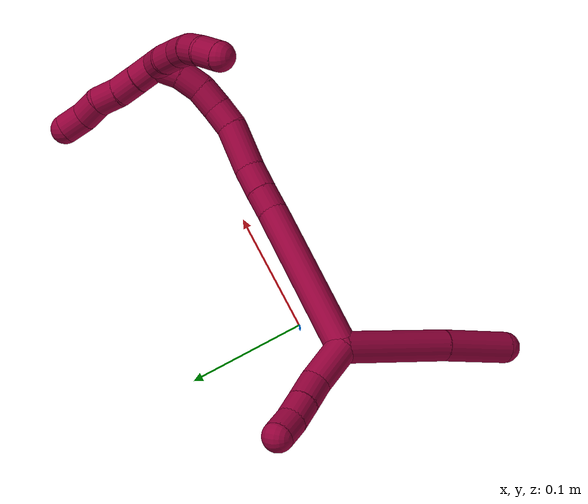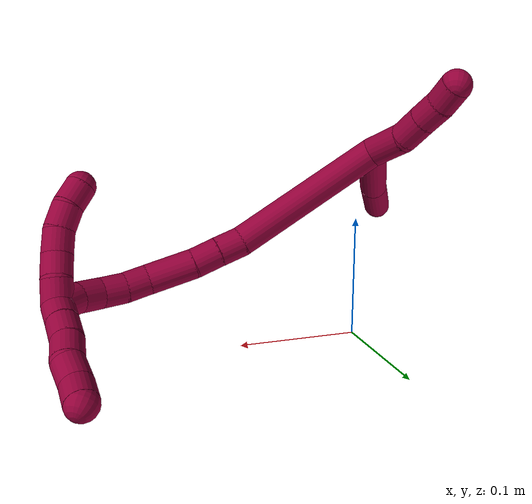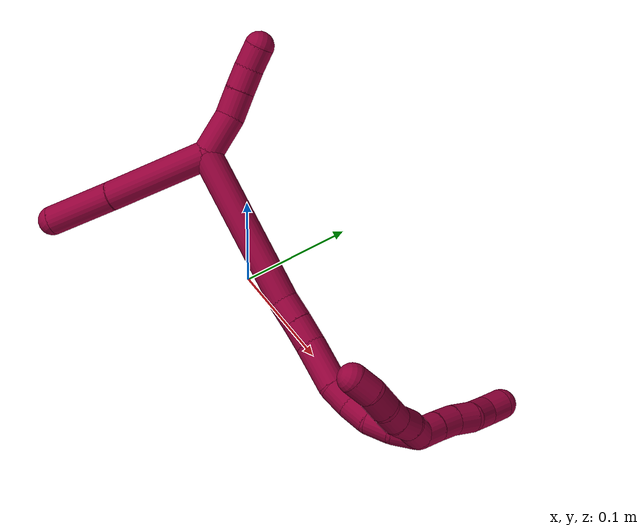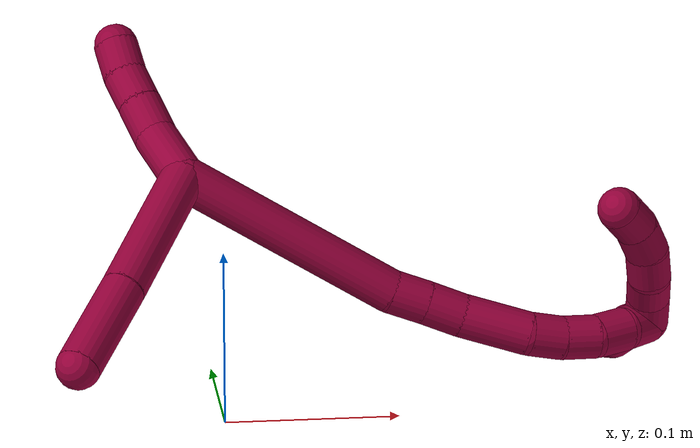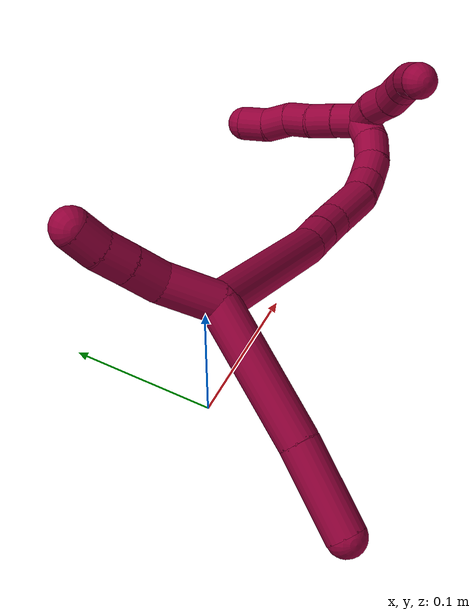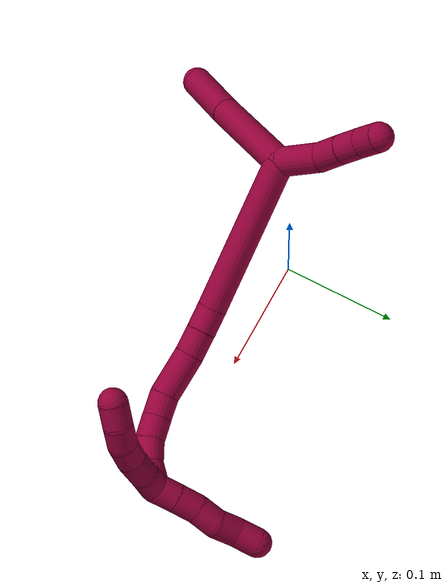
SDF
<sdf version="1.7">
 <world name="default">
  <model name="8">
   <static>0</static>
   <link name="8">
    <collision name="collision-cylinder-e_1_2_8">
     <pose>0.011224 -0.03855 0.021714 1.05782 0.248435 0.145692</pose>
     <geometry><cylinder><radius>0.0125</radius><length>0.091293</length></cylinder></geometry>
     <surface>
      <friction><ode><mu>1.16</mu><mu2>1.16</mu2><slip1>0</slip1><slip2>0</slip2></ode></friction>
      <contact><ode><kp>1e+06</kp><kd>1</kd><max_vel>0</max_vel><min_depth>0.001</min_depth></ode></contact>
     </surface>
    </collision>
    <visual name="visual-cylinder-e_1_2_8">
     <pose>0.011224 -0.03855 0.021714 1.05782 0.248435 0.145692</pose>
     <geometry><cylinder><radius>0.0125</radius><length>0.091293</length></cylinder></geometry>
     <material><ambient>0.584314 0 0.227451 1</ambient></material>
    </visual>
    <collision name="collision-cylinder-e_2_8_6">
     <pose>0.028345 -0.102635 0.056651 1.09301 0.202285 0.123316</pose>
     <geometry><cylinder><radius>0.0125</radius><length>0.058707</length></cylinder></geometry>
     <surface>
      <friction><ode><mu>1.16</mu><mu2>1.16</mu2><slip1>0</slip1><slip2>0</slip2></ode></friction>
      <contact><ode><kp>1e+06</kp><kd>1</kd><max_vel>0</max_vel><min_depth>0.001</min_depth></ode></contact>
     </surface>
    </collision>
    <visual name="visual-cylinder-e_2_8_6">
     <pose>0.028345 -0.102635 0.056651 1.09301 0.202285 0.123316</pose>
     <geometry><cylinder><radius>0.0125</radius><length>0.058707</length></cylinder></geometry>
     <material><ambient>0.584314 0 0.227451 1</ambient></material>
    </visual>
    <collision name="collision-cylinder-e_1_2_9">
     <pose>-0.015708 0.008706 -0.003256 -1.92868 -1.03651 1.37612</pose>
     <geometry><cylinder><radius>0.0125</radius><length>0.036504</length></cylinder></geometry>
     <surface>
      <friction><ode><mu>1.16</mu><mu2>1.16</mu2><slip1>0</slip1><slip2>0</slip2></ode></friction>
      <contact><ode><kp>1e+06</kp><kd>1</kd><max_vel>0</max_vel><min_depth>0.001</min_depth></ode></contact>
     </surface>
    </collision>
    <visual name="visual-cylinder-e_1_2_9">
     <pose>-0.015708 0.008706 -0.003256 -1.92868 -1.03651 1.37612</pose>
     <geometry><cylinder><radius>0.0125</radius><length>0.036504</length></cylinder></geometry>
     <material><ambient>0.584314 0 0.227451 1</ambient></material>
    </visual>
    <collision name="collision-cylinder-e_2_9_10">
     <pose>-0.040453 0.024587 -0.00564 -1.4499 -0.896065 0.805052</pose>
     <geometry><cylinder><radius>0.0125</radius><length>0.023143</length></cylinder></geometry>
     <surface>
      <friction><ode><mu>1.16</mu><mu2>1.16</mu2><slip1>0</slip1><slip2>0</slip2></ode></friction>
      <contact><ode><kp>1e+06</kp><kd>1</kd><max_vel>0</max_vel><min_depth>0.001</min_depth></ode></contact>
     </surface>
    </collision>
    <visual name="visual-cylinder-e_2_9_10">
     <pose>-0.040453 0.024587 -0.00564 -1.4499 -0.896065 0.805052</pose>
     <geometry><cylinder><radius>0.0125</radius><length>0.023143</length></cylinder></geometry>
     <material><ambient>0.584314 0 0.227451 1</ambient></material>
    </visual>
    <collision name="collision-cylinder-e_3_10_11">
     <pose>-0.057518 0.03799 -0.004241 -1.48643 -0.909422 0.844507</pose>
     <geometry><cylinder><radius>0.0125</radius><length>0.020348</length></cylinder></geometry>
     <surface>
      <friction><ode><mu>1.16</mu><mu2>1.16</mu2><slip1>0</slip1><slip2>0</slip2></ode></friction>
      <contact><ode><kp>1e+06</kp><kd>1</kd><max_vel>0</max_vel><min_depth>0.001</min_depth></ode></contact>
     </surface>
    </collision>
    <visual name="visual-cylinder-e_3_10_11">
     <pose>-0.057518 0.03799 -0.004241 -1.48643 -0.909422 0.844507</pose>
     <geometry><cylinder><radius>0.0125</radius><length>0.020348</length></cylinder></geometry>
     <material><ambient>0.584314 0 0.227451 1</ambient></material>
    </visual>
    <collision name="collision-cylinder-e_4_11_5">
     <pose>-0.072373 0.051504 -0.003148 -1.49316 -0.751262 0.699718</pose>
     <geometry><cylinder><radius>0.0125</radius><length>0.020004</length></cylinder></geometry>
     <surface>
      <friction><ode><mu>1.16</mu><mu2>1.16</mu2><slip1>0</slip1><slip2>0</slip2></ode></friction>
      <contact><ode><kp>1e+06</kp><kd>1</kd><max_vel>0</max_vel><min_depth>0.001</min_depth></ode></contact>
     </surface>
    </collision>
    <visual name="visual-cylinder-e_4_11_5">
     <pose>-0.072373 0.051504 -0.003148 -1.49316 -0.751262 0.699718</pose>
     <geometry><cylinder><radius>0.0125</radius><length>0.020004</length></cylinder></geometry>
     <material><ambient>0.584314 0 0.227451 1</ambient></material>
    </visual>
    <collision name="collision-cylinder-e_1_2_12">
     <pose>0.049448 -0.002631 -0.045937 3.08439 0.821372 3.01038</pose>
     <geometry><cylinder><radius>0.0125</radius><length>0.135088</length></cylinder></geometry>
     <surface>
      <friction><ode><mu>1.16</mu><mu2>1.16</mu2><slip1>0</slip1><slip2>0</slip2></ode></friction>
      <contact><ode><kp>1e+06</kp><kd>1</kd><max_vel>0</max_vel><min_depth>0.001</min_depth></ode></contact>
     </surface>
    </collision>
    <visual name="visual-cylinder-e_1_2_12">
     <pose>0.049448 -0.002631 -0.045937 3.08439 0.821372 3.01038</pose>
     <geometry><cylinder><radius>0.0125</radius><length>0.135088</length></cylinder></geometry>
     <material><ambient>0.584314 0 0.227451 1</ambient></material>
    </visual>
    <collision name="collision-cylinder-e_2_12_13">
     <pose>0.106863 -0.003741 -0.098619 -2.9199 0.856068 -2.66303</pose>
     <geometry><cylinder><radius>0.0125</radius><length>0.0211</length></cylinder></geometry>
     <surface>
      <friction><ode><mu>1.16</mu><mu2>1.16</mu2><slip1>0</slip1><slip2>0</slip2></ode></friction>
      <contact><ode><kp>1e+06</kp><kd>1</kd><max_vel>0</max_vel><min_depth>0.001</min_depth></ode></contact>
     </surface>
    </collision>
    <visual name="visual-cylinder-e_2_12_13">
     <pose>0.106863 -0.003741 -0.098619 -2.9199 0.856068 -2.66303</pose>
     <geometry><cylinder><radius>0.0125</radius><length>0.0211</length></cylinder></geometry>
     <material><ambient>0.584314 0 0.227451 1</ambient></material>
    </visual>
    <collision name="collision-cylinder-e_3_13_14">
     <pose>0.123251 -0.001004 -0.112358 -2.96931 0.870371 -2.77429</pose>
     <geometry><cylinder><radius>0.0125</radius><length>0.022026</length></cylinder></geometry>
     <surface>
      <friction><ode><mu>1.16</mu><mu2>1.16</mu2><slip1>0</slip1><slip2>0</slip2></ode></friction>
      <contact><ode><kp>1e+06</kp><kd>1</kd><max_vel>0</max_vel><min_depth>0.001</min_depth></ode></contact>
     </surface>
    </collision>
    <visual name="visual-cylinder-e_3_13_14">
     <pose>0.123251 -0.001004 -0.112358 -2.96931 0.870371 -2.77429</pose>
     <geometry><cylinder><radius>0.0125</radius><length>0.022026</length></cylinder></geometry>
     <material><ambient>0.584314 0 0.227451 1</ambient></material>
    </visual>
    <collision name="collision-cylinder-e_4_14_15">
     <pose>0.147822 0.003611 -0.130242 -2.8392 0.955785 -2.5694</pose>
     <geometry><cylinder><radius>0.0125</radius><length>0.039547</length></cylinder></geometry>
     <surface>
      <friction><ode><mu>1.16</mu><mu2>1.16</mu2><slip1>0</slip1><slip2>0</slip2></ode></friction>
      <contact><ode><kp>1e+06</kp><kd>1</kd><max_vel>0</max_vel><min_depth>0.001</min_depth></ode></contact>
     </surface>
    </collision>
    <visual name="visual-cylinder-e_4_14_15">
     <pose>0.147822 0.003611 -0.130242 -2.8392 0.955785 -2.5694</pose>
     <geometry><cylinder><radius>0.0125</radius><length>0.039547</length></cylinder></geometry>
     <material><ambient>0.584314 0 0.227451 1</ambient></material>
    </visual>
    <collision name="collision-cylinder-e_5_15_16">
     <pose>0.170604 0.010242 -0.147977 -2.70017 0.719485 -2.06584</pose>
     <geometry><cylinder><radius>0.0125</radius><length>0.020128</length></cylinder></geometry>
     <surface>
      <friction><ode><mu>1.16</mu><mu2>1.16</mu2><slip1>0</slip1><slip2>0</slip2></ode></friction>
      <contact><ode><kp>1e+06</kp><kd>1</kd><max_vel>0</max_vel><min_depth>0.001</min_depth></ode></contact>
     </surface>
    </collision>
    <visual name="visual-cylinder-e_5_15_16">
     <pose>0.170604 0.010242 -0.147977 -2.70017 0.719485 -2.06584</pose>
     <geometry><cylinder><radius>0.0125</radius><length>0.020128</length></cylinder></geometry>
     <material><ambient>0.584314 0 0.227451 1</ambient></material>
    </visual>
    <collision name="collision-cylinder-e_6_16_17">
     <pose>0.183575 0.018294 -0.161361 -2.50667 0.662619 -1.61662</pose>
     <geometry><cylinder><radius>0.0125</radius><length>0.020607</length></cylinder></geometry>
     <surface>
      <friction><ode><mu>1.16</mu><mu2>1.16</mu2><slip1>0</slip1><slip2>0</slip2></ode></friction>
      <contact><ode><kp>1e+06</kp><kd>1</kd><max_vel>0</max_vel><min_depth>0.001</min_depth></ode></contact>
     </surface>
    </collision>
    <visual name="visual-cylinder-e_6_16_17">
     <pose>0.183575 0.018294 -0.161361 -2.50667 0.662619 -1.61662</pose>
     <geometry><cylinder><radius>0.0125</radius><length>0.020607</length></cylinder></geometry>
     <material><ambient>0.584314 0 0.227451 1</ambient></material>
    </visual>
    <collision name="collision-cylinder-e_7_17_18">
     <pose>0.193813 0.029325 -0.175198 -2.43634 0.386457 -0.977367</pose>
     <geometry><cylinder><radius>0.0125</radius><length>0.020694</length></cylinder></geometry>
     <surface>
      <friction><ode><mu>1.16</mu><mu2>1.16</mu2><slip1>0</slip1><slip2>0</slip2></ode></friction>
      <contact><ode><kp>1e+06</kp><kd>1</kd><max_vel>0</max_vel><min_depth>0.001</min_depth></ode></contact>
     </surface>
    </collision>
    <visual name="visual-cylinder-e_7_17_18">
     <pose>0.193813 0.029325 -0.175198 -2.43634 0.386457 -0.977367</pose>
     <geometry><cylinder><radius>0.0125</radius><length>0.020694</length></cylinder></geometry>
     <material><ambient>0.584314 0 0.227451 1</ambient></material>
    </visual>
    <collision name="collision-cylinder-e_8_18_1">
     <pose>0.199018 0.041352 -0.191026 -2.54324 0.125762 -0.402751</pose>
     <geometry><cylinder><radius>0.0125</radius><length>0.020811</length></cylinder></geometry>
     <surface>
      <friction><ode><mu>1.16</mu><mu2>1.16</mu2><slip1>0</slip1><slip2>0</slip2></ode></friction>
      <contact><ode><kp>1e+06</kp><kd>1</kd><max_vel>0</max_vel><min_depth>0.001</min_depth></ode></contact>
     </surface>
    </collision>
    <visual name="visual-cylinder-e_8_18_1">
     <pose>0.199018 0.041352 -0.191026 -2.54324 0.125762 -0.402751</pose>
     <geometry><cylinder><radius>0.0125</radius><length>0.020811</length></cylinder></geometry>
     <material><ambient>0.584314 0 0.227451 1</ambient></material>
    </visual>
    <collision name="collision-cylinder-e_1_1_19">
     <pose>0.201517 0.052791 -0.191373 -0.60218 0.119683 -0.037205</pose>
     <geometry><cylinder><radius>0.0125</radius><length>0.02</length></cylinder></geometry>
     <surface>
      <friction><ode><mu>1.16</mu><mu2>1.16</mu2><slip1>0</slip1><slip2>0</slip2></ode></friction>
      <contact><ode><kp>1e+06</kp><kd>1</kd><max_vel>0</max_vel><min_depth>0.001</min_depth></ode></contact>
     </surface>
    </collision>
    <visual name="visual-cylinder-e_1_1_19">
     <pose>0.201517 0.052791 -0.191373 -0.60218 0.119683 -0.037205</pose>
     <geometry><cylinder><radius>0.0125</radius><length>0.02</length></cylinder></geometry>
     <material><ambient>0.584314 0 0.227451 1</ambient></material>
    </visual>
    <collision name="collision-cylinder-e_2_19_20">
     <pose>0.20488 0.062 -0.174111 -0.376021 0.218612 -0.041753</pose>
     <geometry><cylinder><radius>0.0125</radius><length>0.02</length></cylinder></geometry>
     <surface>
      <friction><ode><mu>1.16</mu><mu2>1.16</mu2><slip1>0</slip1><slip2>0</slip2></ode></friction>
      <contact><ode><kp>1e+06</kp><kd>1</kd><max_vel>0</max_vel><min_depth>0.001</min_depth></ode></contact>
     </surface>
    </collision>
    <visual name="visual-cylinder-e_2_19_20">
     <pose>0.20488 0.062 -0.174111 -0.376021 0.218612 -0.041753</pose>
     <geometry><cylinder><radius>0.0125</radius><length>0.02</length></cylinder></geometry>
     <material><ambient>0.584314 0 0.227451 1</ambient></material>
    </visual>
    <collision name="collision-cylinder-e_3_20_21">
     <pose>0.207334 0.070689 -0.156437 -0.535912 0.028538 -0.007836</pose>
     <geometry><cylinder><radius>0.0125</radius><length>0.02</length></cylinder></geometry>
     <surface>
      <friction><ode><mu>1.16</mu><mu2>1.16</mu2><slip1>0</slip1><slip2>0</slip2></ode></friction>
      <contact><ode><kp>1e+06</kp><kd>1</kd><max_vel>0</max_vel><min_depth>0.001</min_depth></ode></contact>
     </surface>
    </collision>
    <visual name="visual-cylinder-e_3_20_21">
     <pose>0.207334 0.070689 -0.156437 -0.535912 0.028538 -0.007836</pose>
     <geometry><cylinder><radius>0.0125</radius><length>0.02</length></cylinder></geometry>
     <material><ambient>0.584314 0 0.227451 1</ambient></material>
    </visual>
    <collision name="collision-cylinder-e_4_21_22">
     <pose>0.205869 0.07943 -0.138693 -0.378393 -0.175978 0.033782</pose>
     <geometry><cylinder><radius>0.0125</radius><length>0.02</length></cylinder></geometry>
     <surface>
      <friction><ode><mu>1.16</mu><mu2>1.16</mu2><slip1>0</slip1><slip2>0</slip2></ode></friction>
      <contact><ode><kp>1e+06</kp><kd>1</kd><max_vel>0</max_vel><min_depth>0.001</min_depth></ode></contact>
     </surface>
    </collision>
    <visual name="visual-cylinder-e_4_21_22">
     <pose>0.205869 0.07943 -0.138693 -0.378393 -0.175978 0.033782</pose>
     <geometry><cylinder><radius>0.0125</radius><length>0.02</length></cylinder></geometry>
     <material><ambient>0.584314 0 0.227451 1</ambient></material>
    </visual>
    <collision name="collision-cylinder-e_5_22_4">
     <pose>0.202068 0.084232 -0.119826 -0.119294 -0.206495 0.012375</pose>
     <geometry><cylinder><radius>0.0125</radius><length>0.02</length></cylinder></geometry>
     <surface>
      <friction><ode><mu>1.16</mu><mu2>1.16</mu2><slip1>0</slip1><slip2>0</slip2></ode></friction>
      <contact><ode><kp>1e+06</kp><kd>1</kd><max_vel>0</max_vel><min_depth>0.001</min_depth></ode></contact>
     </surface>
    </collision>
    <visual name="visual-cylinder-e_5_22_4">
     <pose>0.202068 0.084232 -0.119826 -0.119294 -0.206495 0.012375</pose>
     <geometry><cylinder><radius>0.0125</radius><length>0.02</length></cylinder></geometry>
     <material><ambient>0.584314 0 0.227451 1</ambient></material>
    </visual>
    <collision name="collision-cylinder-e_1_1_23">
     <pose>0.194041 0.047276 -0.207335 -3.12752 -0.679222 3.10177</pose>
     <geometry><cylinder><radius>0.0125</radius><length>0.02</length></cylinder></geometry>
     <surface>
      <friction><ode><mu>1.16</mu><mu2>1.16</mu2><slip1>0</slip1><slip2>0</slip2></ode></friction>
      <contact><ode><kp>1e+06</kp><kd>1</kd><max_vel>0</max_vel><min_depth>0.001</min_depth></ode></contact>
     </surface>
    </collision>
    <visual name="visual-cylinder-e_1_1_23">
     <pose>0.194041 0.047276 -0.207335 -3.12752 -0.679222 3.10177</pose>
     <geometry><cylinder><radius>0.0125</radius><length>0.02</length></cylinder></geometry>
     <material><ambient>0.584314 0 0.227451 1</ambient></material>
    </visual>
    <collision name="collision-cylinder-e_2_23_24">
     <pose>0.181748 0.047138 -0.223103 3.11051 -0.644924 -3.04861</pose>
     <geometry><cylinder><radius>0.0125</radius><length>0.02</length></cylinder></geometry>
     <surface>
      <friction><ode><mu>1.16</mu><mu2>1.16</mu2><slip1>0</slip1><slip2>0</slip2></ode></friction>
      <contact><ode><kp>1e+06</kp><kd>1</kd><max_vel>0</max_vel><min_depth>0.001</min_depth></ode></contact>
     </surface>
    </collision>
    <visual name="visual-cylinder-e_2_23_24">
     <pose>0.181748 0.047138 -0.223103 3.11051 -0.644924 -3.04861</pose>
     <geometry><cylinder><radius>0.0125</radius><length>0.02</length></cylinder></geometry>
     <material><ambient>0.584314 0 0.227451 1</ambient></material>
    </visual>
    <collision name="collision-cylinder-e_3_24_25">
     <pose>0.171072 0.047309 -0.239926 -3.09415 -0.485304 2.95049</pose>
     <geometry><cylinder><radius>0.0125</radius><length>0.02</length></cylinder></geometry>
     <surface>
      <friction><ode><mu>1.16</mu><mu2>1.16</mu2><slip1>0</slip1><slip2>0</slip2></ode></friction>
      <contact><ode><kp>1e+06</kp><kd>1</kd><max_vel>0</max_vel><min_depth>0.001</min_depth></ode></contact>
     </surface>
    </collision>
    <visual name="visual-cylinder-e_3_24_25">
     <pose>0.171072 0.047309 -0.239926 -3.09415 -0.485304 2.95049</pose>
     <geometry><cylinder><radius>0.0125</radius><length>0.02</length></cylinder></geometry>
     <material><ambient>0.584314 0 0.227451 1</ambient></material>
    </visual>
    <collision name="collision-cylinder-e_4_25_26">
     <pose>0.160272 0.04553 -0.256346 2.8595 -0.660489 -2.35621</pose>
     <geometry><cylinder><radius>0.0125</radius><length>0.02</length></cylinder></geometry>
     <surface>
      <friction><ode><mu>1.16</mu><mu2>1.16</mu2><slip1>0</slip1><slip2>0</slip2></ode></friction>
      <contact><ode><kp>1e+06</kp><kd>1</kd><max_vel>0</max_vel><min_depth>0.001</min_depth></ode></contact>
     </surface>
    </collision>
    <visual name="visual-cylinder-e_4_25_26">
     <pose>0.160272 0.04553 -0.256346 2.8595 -0.660489 -2.35621</pose>
     <geometry><cylinder><radius>0.0125</radius><length>0.02</length></cylinder></geometry>
     <material><ambient>0.584314 0 0.227451 1</ambient></material>
    </visual>
    <collision name="collision-cylinder-e_5_26_3">
     <pose>0.147877 0.044037 -0.271697 -3.05099 -0.676426 2.88523</pose>
     <geometry><cylinder><radius>0.0125</radius><length>0.02</length></cylinder></geometry>
     <surface>
      <friction><ode><mu>1.16</mu><mu2>1.16</mu2><slip1>0</slip1><slip2>0</slip2></ode></friction>
      <contact><ode><kp>1e+06</kp><kd>1</kd><max_vel>0</max_vel><min_depth>0.001</min_depth></ode></contact>
     </surface>
    </collision>
    <visual name="visual-cylinder-e_5_26_3">
     <pose>0.147877 0.044037 -0.271697 -3.05099 -0.676426 2.88523</pose>
     <geometry><cylinder><radius>0.0125</radius><length>0.02</length></cylinder></geometry>
     <material><ambient>0.584314 0 0.227451 1</ambient></material>
    </visual>
    <collision name="collision-sphere-3">
     <pose>0.141617 0.044743 -0.279463 0 -0 0</pose>
     <geometry><sphere><radius>0.0125</radius></sphere></geometry>
     <surface>
      <friction><ode><mu>1.16</mu><mu2>1.16</mu2><slip1>0</slip1><slip2>0</slip2></ode></friction>
      <contact><ode><kp>1e+06</kp><kd>1</kd><max_vel>0</max_vel><min_depth>0.001</min_depth></ode></contact>
     </surface>
    </collision>
    <visual name="visual-sphere-3">
     <pose>0.141617 0.044743 -0.279463 0 -0 0</pose>
     <geometry><sphere><radius>0.0125</radius></sphere></geometry>
     <material><ambient>0.584314 0 0.227451 1</ambient></material>
    </visual>
    <collision name="collision-sphere-26">
     <pose>0.154137 0.043332 -0.263931 0 -0 0</pose>
     <geometry><sphere><radius>0.0125</radius></sphere></geometry>
     <surface>
      <friction><ode><mu>1.16</mu><mu2>1.16</mu2><slip1>0</slip1><slip2>0</slip2></ode></friction>
      <contact><ode><kp>1e+06</kp><kd>1</kd><max_vel>0</max_vel><min_depth>0.001</min_depth></ode></contact>
     </surface>
    </collision>
    <visual name="visual-sphere-26">
     <pose>0.154137 0.043332 -0.263931 0 -0 0</pose>
     <geometry><sphere><radius>0.0125</radius></sphere></geometry>
     <material><ambient>0.584314 0 0.227451 1</ambient></material>
    </visual>
    <collision name="collision-sphere-25">
     <pose>0.166407 0.047728 -0.248761 0 -0 0</pose>
     <geometry><sphere><radius>0.0125</radius></sphere></geometry>
     <surface>
      <friction><ode><mu>1.16</mu><mu2>1.16</mu2><slip1>0</slip1><slip2>0</slip2></ode></friction>
      <contact><ode><kp>1e+06</kp><kd>1</kd><max_vel>0</max_vel><min_depth>0.001</min_depth></ode></contact>
     </surface>
    </collision>
    <visual name="visual-sphere-25">
     <pose>0.166407 0.047728 -0.248761 0 -0 0</pose>
     <geometry><sphere><radius>0.0125</radius></sphere></geometry>
     <material><ambient>0.584314 0 0.227451 1</ambient></material>
    </visual>
    <collision name="collision-sphere-24">
     <pose>0.175737 0.046889 -0.23109 0 -0 0</pose>
     <geometry><sphere><radius>0.0125</radius></sphere></geometry>
     <surface>
      <friction><ode><mu>1.16</mu><mu2>1.16</mu2><slip1>0</slip1><slip2>0</slip2></ode></friction>
      <contact><ode><kp>1e+06</kp><kd>1</kd><max_vel>0</max_vel><min_depth>0.001</min_depth></ode></contact>
     </surface>
    </collision>
    <visual name="visual-sphere-24">
     <pose>0.175737 0.046889 -0.23109 0 -0 0</pose>
     <geometry><sphere><radius>0.0125</radius></sphere></geometry>
     <material><ambient>0.584314 0 0.227451 1</ambient></material>
    </visual>
    <collision name="collision-sphere-23">
     <pose>0.18776 0.047386 -0.215115 0 -0 0</pose>
     <geometry><sphere><radius>0.0125</radius></sphere></geometry>
     <surface>
      <friction><ode><mu>1.16</mu><mu2>1.16</mu2><slip1>0</slip1><slip2>0</slip2></ode></friction>
      <contact><ode><kp>1e+06</kp><kd>1</kd><max_vel>0</max_vel><min_depth>0.001</min_depth></ode></contact>
     </surface>
    </collision>
    <visual name="visual-sphere-23">
     <pose>0.18776 0.047386 -0.215115 0 -0 0</pose>
     <geometry><sphere><radius>0.0125</radius></sphere></geometry>
     <material><ambient>0.584314 0 0.227451 1</ambient></material>
    </visual>
    <collision name="collision-sphere-4">
     <pose>0.200017 0.085397 -0.110108 0 -0 0</pose>
     <geometry><sphere><radius>0.0125</radius></sphere></geometry>
     <surface>
      <friction><ode><mu>1.16</mu><mu2>1.16</mu2><slip1>0</slip1><slip2>0</slip2></ode></friction>
      <contact><ode><kp>1e+06</kp><kd>1</kd><max_vel>0</max_vel><min_depth>0.001</min_depth></ode></contact>
     </surface>
    </collision>
    <visual name="visual-sphere-4">
     <pose>0.200017 0.085397 -0.110108 0 -0 0</pose>
     <geometry><sphere><radius>0.0125</radius></sphere></geometry>
     <material><ambient>0.584314 0 0.227451 1</ambient></material>
    </visual>
    <collision name="collision-sphere-22">
     <pose>0.204118 0.083067 -0.129544 0 -0 0</pose>
     <geometry><sphere><radius>0.0125</radius></sphere></geometry>
     <surface>
      <friction><ode><mu>1.16</mu><mu2>1.16</mu2><slip1>0</slip1><slip2>0</slip2></ode></friction>
      <contact><ode><kp>1e+06</kp><kd>1</kd><max_vel>0</max_vel><min_depth>0.001</min_depth></ode></contact>
     </surface>
    </collision>
    <visual name="visual-sphere-22">
     <pose>0.204118 0.083067 -0.129544 0 -0 0</pose>
     <geometry><sphere><radius>0.0125</radius></sphere></geometry>
     <material><ambient>0.584314 0 0.227451 1</ambient></material>
    </visual>
    <collision name="collision-sphere-21">
     <pose>0.207619 0.075793 -0.147842 0 -0 0</pose>
     <geometry><sphere><radius>0.0125</radius></sphere></geometry>
     <surface>
      <friction><ode><mu>1.16</mu><mu2>1.16</mu2><slip1>0</slip1><slip2>0</slip2></ode></friction>
      <contact><ode><kp>1e+06</kp><kd>1</kd><max_vel>0</max_vel><min_depth>0.001</min_depth></ode></contact>
     </surface>
    </collision>
    <visual name="visual-sphere-21">
     <pose>0.207619 0.075793 -0.147842 0 -0 0</pose>
     <geometry><sphere><radius>0.0125</radius></sphere></geometry>
     <material><ambient>0.584314 0 0.227451 1</ambient></material>
    </visual>
    <collision name="collision-sphere-20">
     <pose>0.207049 0.065584 -0.165031 0 -0 0</pose>
     <geometry><sphere><radius>0.0125</radius></sphere></geometry>
     <surface>
      <friction><ode><mu>1.16</mu><mu2>1.16</mu2><slip1>0</slip1><slip2>0</slip2></ode></friction>
      <contact><ode><kp>1e+06</kp><kd>1</kd><max_vel>0</max_vel><min_depth>0.001</min_depth></ode></contact>
     </surface>
    </collision>
    <visual name="visual-sphere-20">
     <pose>0.207049 0.065584 -0.165031 0 -0 0</pose>
     <geometry><sphere><radius>0.0125</radius></sphere></geometry>
     <material><ambient>0.584314 0 0.227451 1</ambient></material>
    </visual>
    <collision name="collision-sphere-11">
     <pose>-0.065546 0.044216 -0.003715 0 -0 0</pose>
     <geometry><sphere><radius>0.0125</radius></sphere></geometry>
     <surface>
      <friction><ode><mu>1.16</mu><mu2>1.16</mu2><slip1>0</slip1><slip2>0</slip2></ode></friction>
      <contact><ode><kp>1e+06</kp><kd>1</kd><max_vel>0</max_vel><min_depth>0.001</min_depth></ode></contact>
     </surface>
    </collision>
    <visual name="visual-sphere-11">
     <pose>-0.065546 0.044216 -0.003715 0 -0 0</pose>
     <geometry><sphere><radius>0.0125</radius></sphere></geometry>
     <material><ambient>0.584314 0 0.227451 1</ambient></material>
    </visual>
    <collision name="collision-sphere-10">
     <pose>-0.049489 0.031763 -0.004768 0 -0 0</pose>
     <geometry><sphere><radius>0.0125</radius></sphere></geometry>
     <surface>
      <friction><ode><mu>1.16</mu><mu2>1.16</mu2><slip1>0</slip1><slip2>0</slip2></ode></friction>
      <contact><ode><kp>1e+06</kp><kd>1</kd><max_vel>0</max_vel><min_depth>0.001</min_depth></ode></contact>
     </surface>
    </collision>
    <visual name="visual-sphere-10">
     <pose>-0.049489 0.031763 -0.004768 0 -0 0</pose>
     <geometry><sphere><radius>0.0125</radius></sphere></geometry>
     <material><ambient>0.584314 0 0.227451 1</ambient></material>
    </visual>
    <collision name="collision-sphere-6">
     <pose>0.034243 -0.12817 0.069872 0 -0 0</pose>
     <geometry><sphere><radius>0.0125</radius></sphere></geometry>
     <surface>
      <friction><ode><mu>1.16</mu><mu2>1.16</mu2><slip1>0</slip1><slip2>0</slip2></ode></friction>
      <contact><ode><kp>1e+06</kp><kd>1</kd><max_vel>0</max_vel><min_depth>0.001</min_depth></ode></contact>
     </surface>
    </collision>
    <visual name="visual-sphere-6">
     <pose>0.034243 -0.12817 0.069872 0 -0 0</pose>
     <geometry><sphere><radius>0.0125</radius></sphere></geometry>
     <material><ambient>0.584314 0 0.227451 1</ambient></material>
    </visual>
    <collision name="collision-sphere-9">
     <pose>-0.031417 0.017411 -0.006512 0 -0 0</pose>
     <geometry><sphere><radius>0.0125</radius></sphere></geometry>
     <surface>
      <friction><ode><mu>1.16</mu><mu2>1.16</mu2><slip1>0</slip1><slip2>0</slip2></ode></friction>
      <contact><ode><kp>1e+06</kp><kd>1</kd><max_vel>0</max_vel><min_depth>0.001</min_depth></ode></contact>
     </surface>
    </collision>
    <visual name="visual-sphere-9">
     <pose>-0.031417 0.017411 -0.006512 0 -0 0</pose>
     <geometry><sphere><radius>0.0125</radius></sphere></geometry>
     <material><ambient>0.584314 0 0.227451 1</ambient></material>
    </visual>
    <collision name="collision-sphere-2">
     <geometry><sphere><radius>0.0125</radius></sphere></geometry>
     <surface>
      <friction><ode><mu>1.16</mu><mu2>1.16</mu2><slip1>0</slip1><slip2>0</slip2></ode></friction>
      <contact><ode><kp>1e+06</kp><kd>1</kd><max_vel>0</max_vel><min_depth>0.001</min_depth></ode></contact>
     </surface>
    </collision>
    <visual name="visual-sphere-2">
     <geometry><sphere><radius>0.0125</radius></sphere></geometry>
     <material><ambient>0.584314 0 0.227451 1</ambient></material>
    </visual>
    <collision name="collision-sphere-19">
     <pose>0.202711 0.058415 -0.183191 0 -0 0</pose>
     <geometry><sphere><radius>0.0125</radius></sphere></geometry>
     <surface>
      <friction><ode><mu>1.16</mu><mu2>1.16</mu2><slip1>0</slip1><slip2>0</slip2></ode></friction>
      <contact><ode><kp>1e+06</kp><kd>1</kd><max_vel>0</max_vel><min_depth>0.001</min_depth></ode></contact>
     </surface>
    </collision>
    <visual name="visual-sphere-19">
     <pose>0.202711 0.058415 -0.183191 0 -0 0</pose>
     <geometry><sphere><radius>0.0125</radius></sphere></geometry>
     <material><ambient>0.584314 0 0.227451 1</ambient></material>
    </visual>
    <collision name="collision-sphere-8">
     <pose>0.022448 -0.077101 0.043429 0 -0 0</pose>
     <geometry><sphere><radius>0.0125</radius></sphere></geometry>
     <surface>
      <friction><ode><mu>1.16</mu><mu2>1.16</mu2><slip1>0</slip1><slip2>0</slip2></ode></friction>
      <contact><ode><kp>1e+06</kp><kd>1</kd><max_vel>0</max_vel><min_depth>0.001</min_depth></ode></contact>
     </surface>
    </collision>
    <visual name="visual-sphere-8">
     <pose>0.022448 -0.077101 0.043429 0 -0 0</pose>
     <geometry><sphere><radius>0.0125</radius></sphere></geometry>
     <material><ambient>0.584314 0 0.227451 1</ambient></material>
    </visual>
    <collision name="collision-sphere-5">
     <pose>-0.079201 0.058792 -0.002581 0 -0 0</pose>
     <geometry><sphere><radius>0.0125</radius></sphere></geometry>
     <surface>
      <friction><ode><mu>1.16</mu><mu2>1.16</mu2><slip1>0</slip1><slip2>0</slip2></ode></friction>
      <contact><ode><kp>1e+06</kp><kd>1</kd><max_vel>0</max_vel><min_depth>0.001</min_depth></ode></contact>
     </surface>
    </collision>
    <visual name="visual-sphere-5">
     <pose>-0.079201 0.058792 -0.002581 0 -0 0</pose>
     <geometry><sphere><radius>0.0125</radius></sphere></geometry>
     <material><ambient>0.584314 0 0.227451 1</ambient></material>
    </visual>
    <collision name="collision-sphere-12">
     <pose>0.098895 -0.005261 -0.091874 0 -0 0</pose>
     <geometry><sphere><radius>0.0125</radius></sphere></geometry>
     <surface>
      <friction><ode><mu>1.16</mu><mu2>1.16</mu2><slip1>0</slip1><slip2>0</slip2></ode></friction>
      <contact><ode><kp>1e+06</kp><kd>1</kd><max_vel>0</max_vel><min_depth>0.001</min_depth></ode></contact>
     </surface>
    </collision>
    <visual name="visual-sphere-12">
     <pose>0.098895 -0.005261 -0.091874 0 -0 0</pose>
     <geometry><sphere><radius>0.0125</radius></sphere></geometry>
     <material><ambient>0.584314 0 0.227451 1</ambient></material>
    </visual>
    <collision name="collision-sphere-13">
     <pose>0.114831 -0.002221 -0.105364 0 -0 0</pose>
     <geometry><sphere><radius>0.0125</radius></sphere></geometry>
     <surface>
      <friction><ode><mu>1.16</mu><mu2>1.16</mu2><slip1>0</slip1><slip2>0</slip2></ode></friction>
      <contact><ode><kp>1e+06</kp><kd>1</kd><max_vel>0</max_vel><min_depth>0.001</min_depth></ode></contact>
     </surface>
    </collision>
    <visual name="visual-sphere-13">
     <pose>0.114831 -0.002221 -0.105364 0 -0 0</pose>
     <geometry><sphere><radius>0.0125</radius></sphere></geometry>
     <material><ambient>0.584314 0 0.227451 1</ambient></material>
    </visual>
    <collision name="collision-sphere-14">
     <pose>0.131671 0.000213 -0.119351 0 -0 0</pose>
     <geometry><sphere><radius>0.0125</radius></sphere></geometry>
     <surface>
      <friction><ode><mu>1.16</mu><mu2>1.16</mu2><slip1>0</slip1><slip2>0</slip2></ode></friction>
      <contact><ode><kp>1e+06</kp><kd>1</kd><max_vel>0</max_vel><min_depth>0.001</min_depth></ode></contact>
     </surface>
    </collision>
    <visual name="visual-sphere-14">
     <pose>0.131671 0.000213 -0.119351 0 -0 0</pose>
     <geometry><sphere><radius>0.0125</radius></sphere></geometry>
     <material><ambient>0.584314 0 0.227451 1</ambient></material>
    </visual>
    <collision name="collision-sphere-15">
     <pose>0.163972 0.007008 -0.141133 0 -0 0</pose>
     <geometry><sphere><radius>0.0125</radius></sphere></geometry>
     <surface>
      <friction><ode><mu>1.16</mu><mu2>1.16</mu2><slip1>0</slip1><slip2>0</slip2></ode></friction>
      <contact><ode><kp>1e+06</kp><kd>1</kd><max_vel>0</max_vel><min_depth>0.001</min_depth></ode></contact>
     </surface>
    </collision>
    <visual name="visual-sphere-15">
     <pose>0.163972 0.007008 -0.141133 0 -0 0</pose>
     <geometry><sphere><radius>0.0125</radius></sphere></geometry>
     <material><ambient>0.584314 0 0.227451 1</ambient></material>
    </visual>
    <collision name="collision-sphere-16">
     <pose>0.177236 0.013476 -0.154821 0 -0 0</pose>
     <geometry><sphere><radius>0.0125</radius></sphere></geometry>
     <surface>
      <friction><ode><mu>1.16</mu><mu2>1.16</mu2><slip1>0</slip1><slip2>0</slip2></ode></friction>
      <contact><ode><kp>1e+06</kp><kd>1</kd><max_vel>0</max_vel><min_depth>0.001</min_depth></ode></contact>
     </surface>
    </collision>
    <visual name="visual-sphere-16">
     <pose>0.177236 0.013476 -0.154821 0 -0 0</pose>
     <geometry><sphere><radius>0.0125</radius></sphere></geometry>
     <material><ambient>0.584314 0 0.227451 1</ambient></material>
    </visual>
    <collision name="collision-sphere-17">
     <pose>0.189913 0.023112 -0.167901 0 -0 0</pose>
     <geometry><sphere><radius>0.0125</radius></sphere></geometry>
     <surface>
      <friction><ode><mu>1.16</mu><mu2>1.16</mu2><slip1>0</slip1><slip2>0</slip2></ode></friction>
      <contact><ode><kp>1e+06</kp><kd>1</kd><max_vel>0</max_vel><min_depth>0.001</min_depth></ode></contact>
     </surface>
    </collision>
    <visual name="visual-sphere-17">
     <pose>0.189913 0.023112 -0.167901 0 -0 0</pose>
     <geometry><sphere><radius>0.0125</radius></sphere></geometry>
     <material><ambient>0.584314 0 0.227451 1</ambient></material>
    </visual>
    <collision name="collision-sphere-18">
     <pose>0.197713 0.035537 -0.182496 0 -0 0</pose>
     <geometry><sphere><radius>0.0125</radius></sphere></geometry>
     <surface>
      <friction><ode><mu>1.16</mu><mu2>1.16</mu2><slip1>0</slip1><slip2>0</slip2></ode></friction>
      <contact><ode><kp>1e+06</kp><kd>1</kd><max_vel>0</max_vel><min_depth>0.001</min_depth></ode></contact>
     </surface>
    </collision>
    <visual name="visual-sphere-18">
     <pose>0.197713 0.035537 -0.182496 0 -0 0</pose>
     <geometry><sphere><radius>0.0125</radius></sphere></geometry>
     <material><ambient>0.584314 0 0.227451 1</ambient></material>
    </visual>
    <collision name="collision-sphere-1">
     <pose>0.200323 0.047167 -0.199556 0 -0 0</pose>
     <geometry><sphere><radius>0.0125</radius></sphere></geometry>
     <surface>
      <friction><ode><mu>1.16</mu><mu2>1.16</mu2><slip1>0</slip1><slip2>0</slip2></ode></friction>
      <contact><ode><kp>1e+06</kp><kd>1</kd><max_vel>0</max_vel><min_depth>0.001</min_depth></ode></contact>
     </surface>
    </collision>
    <visual name="visual-sphere-1">
     <pose>0.200323 0.047167 -0.199556 0 -0 0</pose>
     <geometry><sphere><radius>0.0125</radius></sphere></geometry>
     <material><ambient>0.584314 0 0.227451 1</ambient></material>
    </visual>
    <inertial>
     <pose>0.091945 0.008655 -0.085978 0 -0 0</pose>
     <mass>0.75</mass>
     <inertia>
      <ixx>-2.3e-05</ixx>
      <ixy>0</ixy>
      <ixz>0</ixz>
      <iyy>0.000313</iyy>
      <iyz>0</iyz>
      <izz>-0.000114</izz>
     </inertia>
    </inertial>
   </link>
   <pose>-0.023949 -0.02296 0.151523 0.981338 0.149633 -0.700799</pose>
  </model>
 </world>
</sdf>
